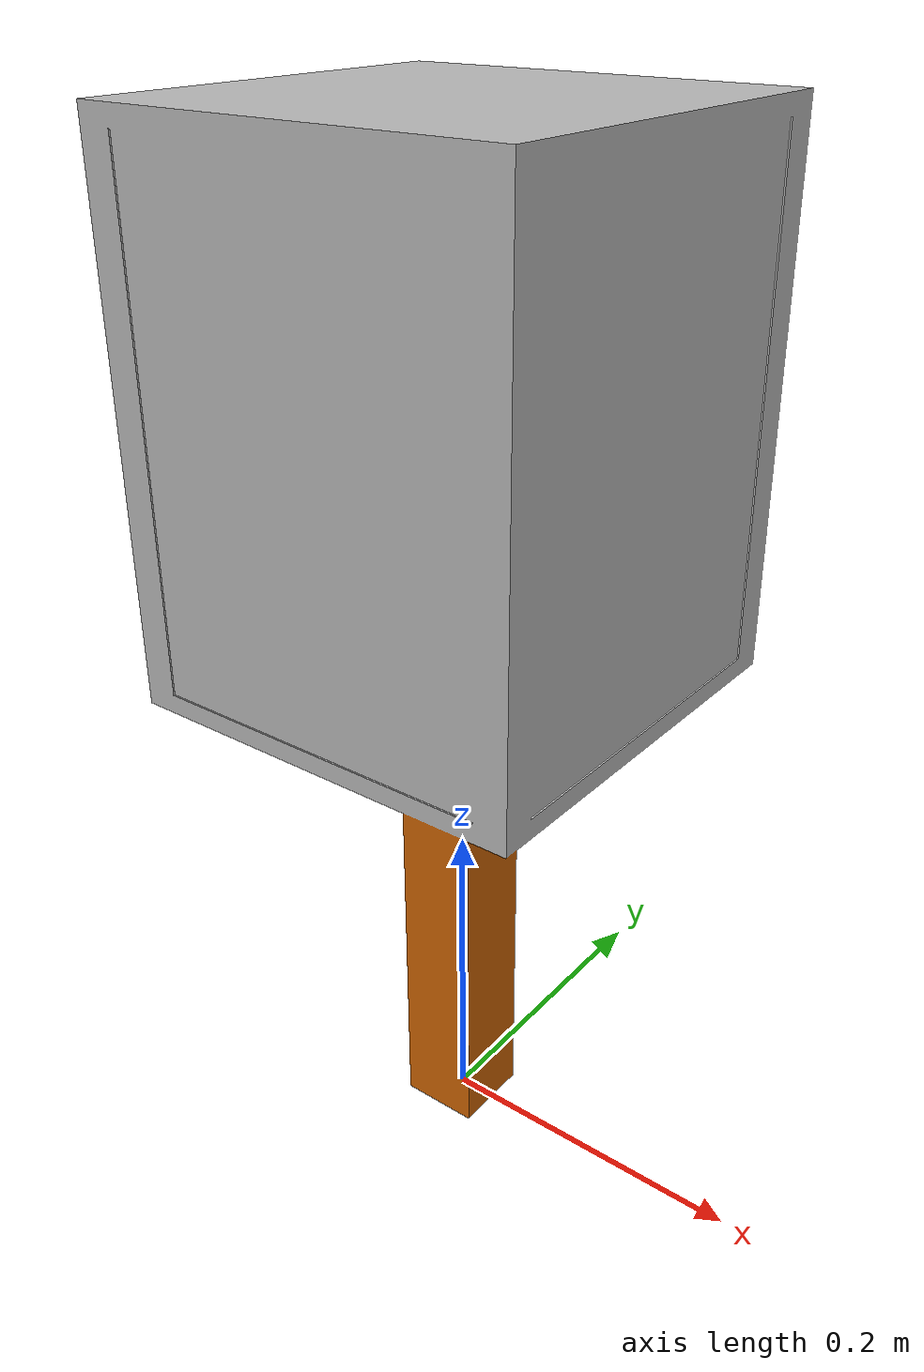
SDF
<?xml version="1.0" ?>
<sdf version="1.6">
    <model name="pole51">
        <static>true</static>
        <pose>0 0 0 0 0 0</pose>
        <link name="link">
            <collision name="collision">
                <geometry>
                    <mesh>
                        <scale>1 1 1</scale>
                        <uri>model://pole51/meshes/pole51.stl</uri>
                    </mesh>
                </geometry>
                <surface>
                    <friction>
                        <ode>
                            <mu>1.2</mu>
                            <mu2>1.2</mu2>
                        </ode>
                    </friction>
                </surface>
            </collision>
            <visual name="visual">
                <geometry>
                    <mesh>
                        <scale>1 1 1</scale>
                        <uri>model://pole51/meshes/pole51.dae</uri>
                    </mesh>
                </geometry>
            </visual>
        </link>
    </model>
</sdf>
